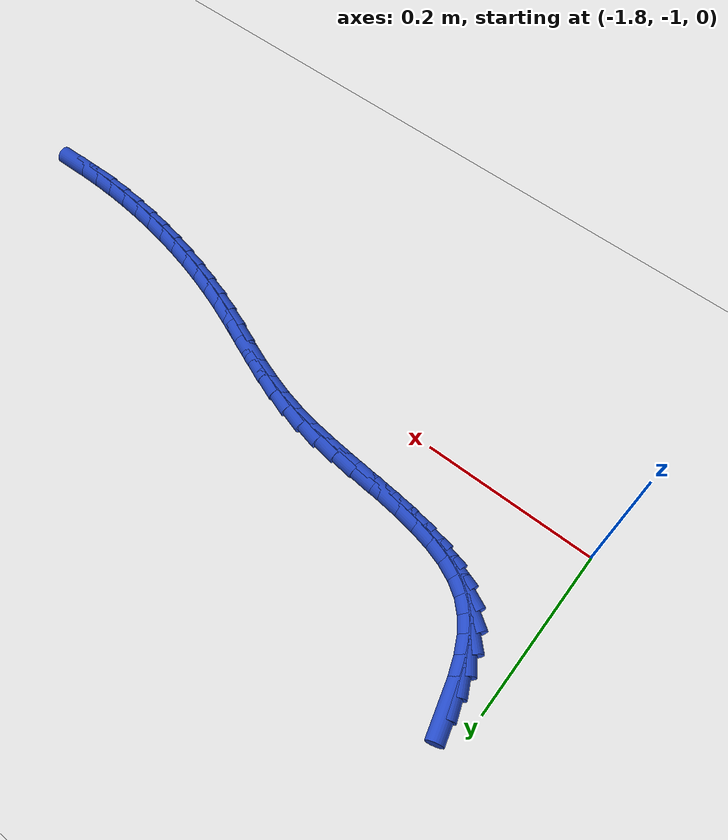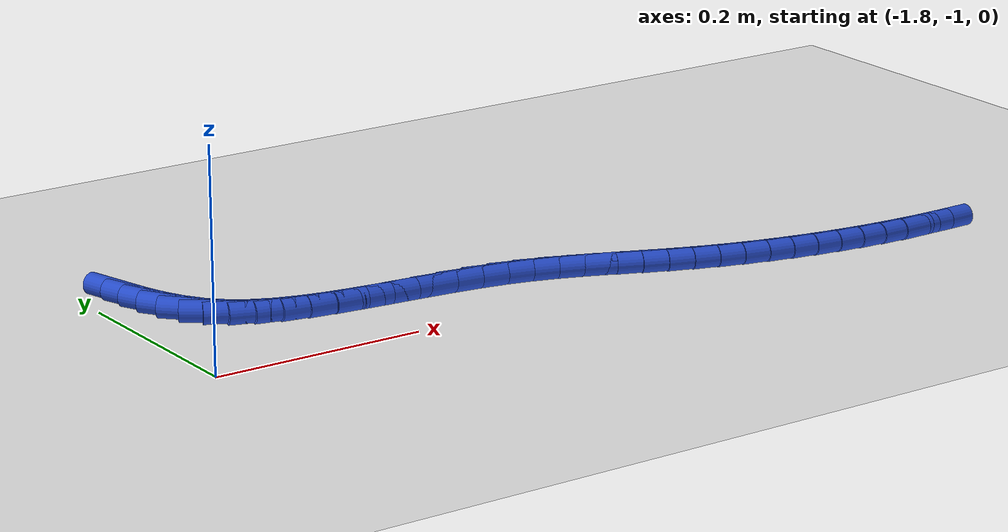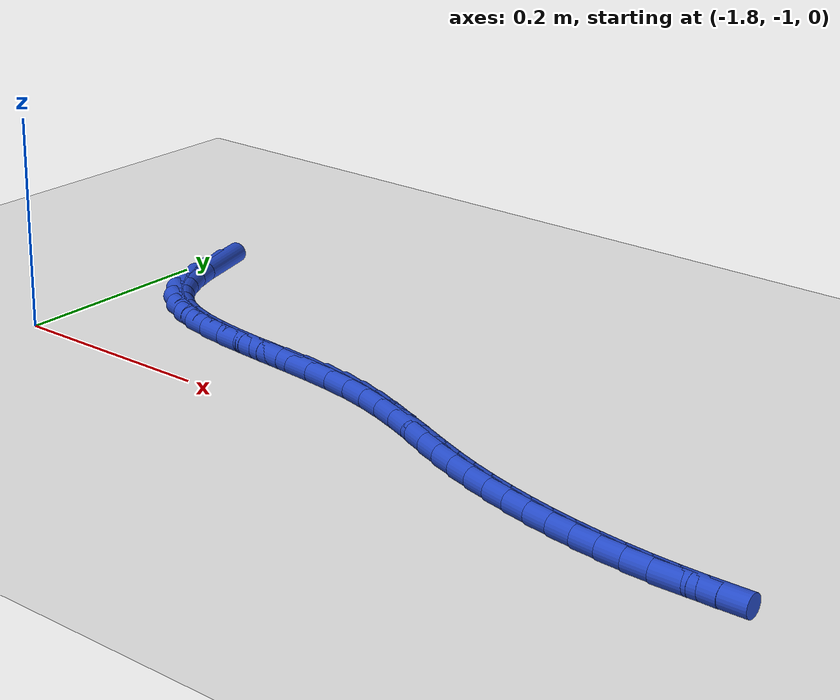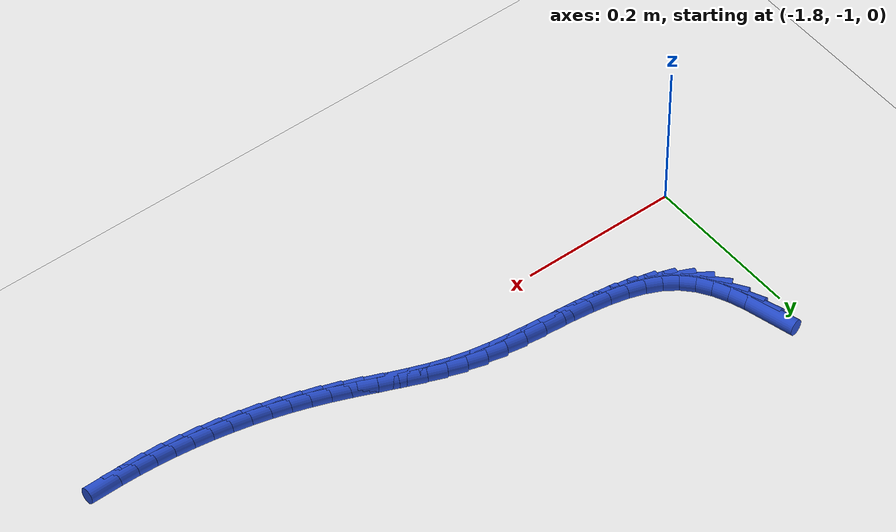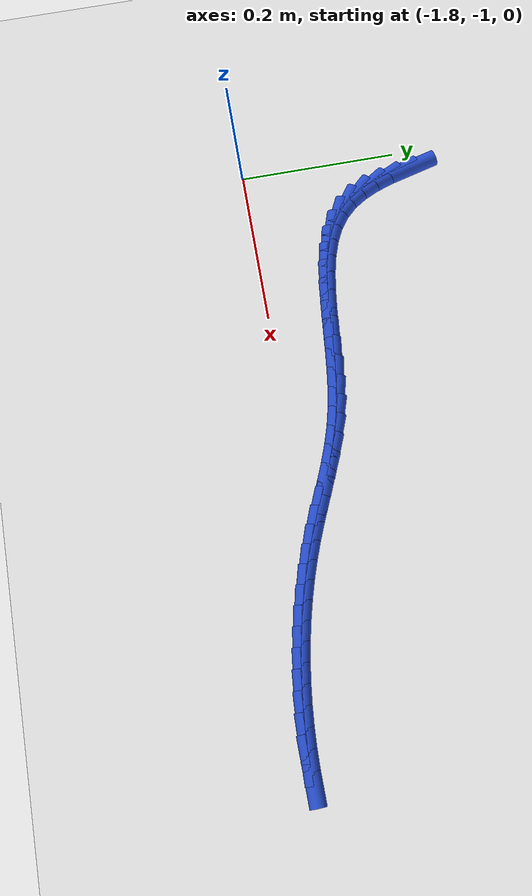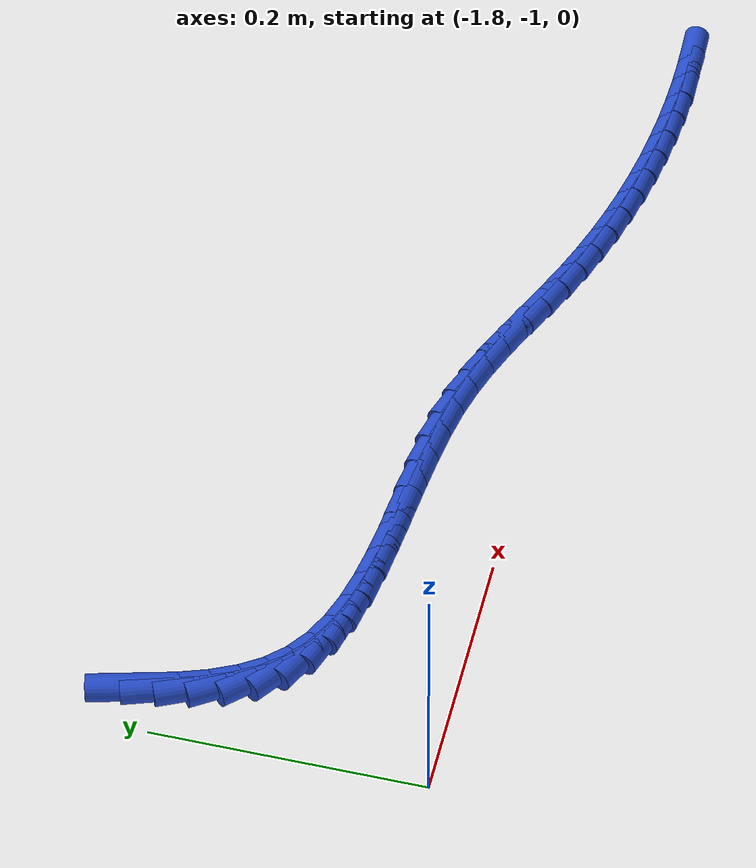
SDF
<sdf version="1.6">
 <world name="default">
  <model name="ground_plane">
   <static>1</static>
   <link name="link">
    <collision name="collision">
     <geometry><plane><normal>0 0 1</normal><size>100 100</size></plane></geometry>
     <surface><friction><ode><mu>100</mu><mu2>50</mu2></ode></friction></surface>
    </collision>
    <visual name="visual">
     <cast_shadows>0</cast_shadows>
     <geometry><plane><normal>0 0 1</normal><size>100 100</size></plane></geometry>
     <material>
      <script><uri>file://media/materials/scripts/gazebo.material</uri><name>Gazebo/WhiteGlow</name></script>
     </material>
    </visual>
   </link>
  </model>
  <model name="line">
   <link name="link_176">
    <pose>-1.7695899046399313 -0.7878719735642523 0.01 0 1.57 -1.3110542526922335</pose>
    <collision name="collision">
     <geometry><cylinder><radius>0.01</radius><length>0.08</length></cylinder></geometry>
    </collision>
    <visual name="visual">
     <material>
      <script><name>Gazebo/Blue</name><uri>file://media/materials/scripts/gazebo.material</uri></script>
     </material>
     <geometry><cylinder><radius>0.01</radius><length>0.08</length></cylinder></geometry>
    </visual>
   </link>
   <link name="link_177">
    <pose>-1.7634740653323266 -0.8108858798129241 0.01 0 1.57 -1.2358393991711434</pose>
    <collision name="collision">
     <geometry><cylinder><radius>0.01</radius><length>0.08</length></cylinder></geometry>
    </collision>
    <visual name="visual">
     <material>
      <script><name>Gazebo/Blue</name><uri>file://media/materials/scripts/gazebo.material</uri></script>
     </material>
     <geometry><cylinder><radius>0.01</radius><length>0.08</length></cylinder></geometry>
    </visual>
   </link>
   <link name="link_178">
    <pose>-1.7560218552499531 -0.8322957963094053 0.01 0 1.57 -1.1293885281058291</pose>
    <collision name="collision">
     <geometry><cylinder><radius>0.01</radius><length>0.08</length></cylinder></geometry>
    </collision>
    <visual name="visual">
     <material>
      <script><name>Gazebo/Blue</name><uri>file://media/materials/scripts/gazebo.material</uri></script>
     </material>
     <geometry><cylinder><radius>0.01</radius><length>0.08</length></cylinder></geometry>
    </visual>
   </link>
   <link name="link_179">
    <pose>-1.7468418427147905 -0.8517243332401836 0.01 0 1.57 -0.9860697219001522</pose>
    <collision name="collision">
     <geometry><cylinder><radius>0.01</radius><length>0.08</length></cylinder></geometry>
    </collision>
    <visual name="visual">
     <material>
      <script><name>Gazebo/Blue</name><uri>file://media/materials/scripts/gazebo.material</uri></script>
     </material>
     <geometry><cylinder><radius>0.01</radius><length>0.08</length></cylinder></geometry>
    </visual>
   </link>
   <link name="link_180">
    <pose>-1.7355425960488202 -0.8687941007917469 0.01 0 1.57 -0.8041712068068045</pose>
    <collision name="collision">
     <geometry><cylinder><radius>0.01</radius><length>0.08</length></cylinder></geometry>
    </collision>
    <visual name="visual">
     <material>
      <script><name>Gazebo/Blue</name><uri>file://media/materials/scripts/gazebo.material</uri></script>
     </material>
     <geometry><cylinder><radius>0.01</radius><length>0.08</length></cylinder></geometry>
    </visual>
   </link>
   <link name="link_181">
    <pose>-1.7217349644224205 -0.8831301367882725 0.01 0 1.57 -0.6087997360396437</pose>
    <collision name="collision">
     <geometry><cylinder><radius>0.01</radius><length>0.08</length></cylinder></geometry>
    </collision>
    <visual name="visual">
     <material>
      <script><name>Gazebo/Blue</name><uri>file://media/materials/scripts/gazebo.material</uri></script>
     </material>
     <geometry><cylinder><radius>0.01</radius><length>0.08</length></cylinder></geometry>
    </visual>
   </link>
   <link name="link_182">
    <pose>-1.7052673197819812 -0.8946102881591274 0.01 0 1.57 -0.4445202634442404</pose>
    <collision name="collision">
     <geometry><cylinder><radius>0.01</radius><length>0.08</length></cylinder></geometry>
    </collision>
    <visual name="visual">
     <material>
      <script><name>Gazebo/Blue</name><uri>file://media/materials/scripts/gazebo.material</uri></script>
     </material>
     <geometry><cylinder><radius>0.01</radius><length>0.08</length></cylinder></geometry>
    </visual>
   </link>
   <link name="link_183">
    <pose>-1.6864299768119149 -0.9035827868216939 0.01 0 1.57 -0.31778493278388914</pose>
    <collision name="collision">
     <geometry><cylinder><radius>0.01</radius><length>0.08</length></cylinder></geometry>
    </collision>
    <visual name="visual">
     <material>
      <script><name>Gazebo/Blue</name><uri>file://media/materials/scripts/gazebo.material</uri></script>
     </material>
     <geometry><cylinder><radius>0.01</radius><length>0.08</length></cylinder></geometry>
    </visual>
   </link>
   <link name="link_184">
    <pose>-1.6655614248499198 -0.9104471397381935 0.01 0 1.57 -0.22466281270420518</pose>
    <collision name="collision">
     <geometry><cylinder><radius>0.01</radius><length>0.08</length></cylinder></geometry>
    </collision>
    <visual name="visual">
     <material>
      <script><name>Gazebo/Blue</name><uri>file://media/materials/scripts/gazebo.material</uri></script>
     </material>
     <geometry><cylinder><radius>0.01</radius><length>0.08</length></cylinder></geometry>
    </visual>
   </link>
   <link name="link_185">
    <pose>-1.6430001532336957 -0.9156028538708476 0.01 0 1.57 -0.15947471651282802</pose>
    <collision name="collision">
     <geometry><cylinder><radius>0.01</radius><length>0.08</length></cylinder></geometry>
    </collision>
    <visual name="visual">
     <material>
      <script><name>Gazebo/Blue</name><uri>file://media/materials/scripts/gazebo.material</uri></script>
     </material>
     <geometry><cylinder><radius>0.01</radius><length>0.08</length></cylinder></geometry>
    </visual>
   </link>
   <link name="link_186">
    <pose>-1.6190846513009418 -0.9194494361818779 0.01 0 1.57 -0.11726185157563984</pose>
    <collision name="collision">
     <geometry><cylinder><radius>0.01</radius><length>0.08</length></cylinder></geometry>
    </collision>
    <visual name="visual">
     <material>
      <script><name>Gazebo/Blue</name><uri>file://media/materials/scripts/gazebo.material</uri></script>
     </material>
     <geometry><cylinder><radius>0.01</radius><length>0.08</length></cylinder></geometry>
    </visual>
   </link>
   <link name="link_187">
    <pose>-1.5941534083893578 -0.9223863936335065 0.01 0 1.57 -0.0944847998326429</pose>
    <collision name="collision">
     <geometry><cylinder><radius>0.01</radius><length>0.08</length></cylinder></geometry>
    </collision>
    <visual name="visual">
     <material>
      <script><name>Gazebo/Blue</name><uri>file://media/materials/scripts/gazebo.material</uri></script>
     </material>
     <geometry><cylinder><radius>0.01</radius><length>0.08</length></cylinder></geometry>
    </visual>
   </link>
   <link name="link_188">
    <pose>-1.5685449138366423 -0.9248132331879545 0.01 0 1.57 -0.08903081909985161</pose>
    <collision name="collision">
     <geometry><cylinder><radius>0.01</radius><length>0.08</length></cylinder></geometry>
    </collision>
    <visual name="visual">
     <material>
      <script><name>Gazebo/Blue</name><uri>file://media/materials/scripts/gazebo.material</uri></script>
     </material>
     <geometry><cylinder><radius>0.01</radius><length>0.08</length></cylinder></geometry>
    </visual>
   </link>
   <link name="link_189">
    <pose>-1.5425976569804942 -0.9271294618074436 0.01 0 1.57 -0.10006439605375111</pose>
    <collision name="collision">
     <geometry><cylinder><radius>0.01</radius><length>0.08</length></cylinder></geometry>
    </collision>
    <visual name="visual">
     <material>
      <script><name>Gazebo/Blue</name><uri>file://media/materials/scripts/gazebo.material</uri></script>
     </material>
     <geometry><cylinder><radius>0.01</radius><length>0.08</length></cylinder></geometry>
    </visual>
   </link>
   <link name="link_190">
    <pose>-1.516650127158614 -0.929734586454196 0.01 0 1.57 -0.1279045526520036</pose>
    <collision name="collision">
     <geometry><cylinder><radius>0.01</radius><length>0.08</length></cylinder></geometry>
    </collision>
    <visual name="visual">
     <material>
      <script><name>Gazebo/Blue</name><uri>file://media/materials/scripts/gazebo.material</uri></script>
     </material>
     <geometry><cylinder><radius>0.01</radius><length>0.08</length></cylinder></geometry>
    </visual>
   </link>
   <link name="link_191">
    <pose>-1.4910408137087 -0.9330281140904328 0.01 0 1.57 -0.1739550705318752</pose>
    <collision name="collision">
     <geometry><cylinder><radius>0.01</radius><length>0.08</length></cylinder></geometry>
    </collision>
    <visual name="visual">
     <material>
      <script><name>Gazebo/Blue</name><uri>file://media/materials/scripts/gazebo.material</uri></script>
     </material>
     <geometry><cylinder><radius>0.01</radius><length>0.08</length></cylinder></geometry>
    </visual>
   </link>
   <link name="link_192">
    <pose>-1.4661082059684523 -0.9374095516783756 0.01 0 1.57 -0.23853593183771524</pose>
    <collision name="collision">
     <geometry><cylinder><radius>0.01</radius><length>0.08</length></cylinder></geometry>
    </collision>
    <visual name="visual">
     <material>
      <script><name>Gazebo/Blue</name><uri>file://media/materials/scripts/gazebo.material</uri></script>
     </material>
     <geometry><cylinder><radius>0.01</radius><length>0.08</length></cylinder></geometry>
    </visual>
   </link>
   <link name="link_193">
    <pose>-1.4421569364573092 -0.9432336743833426 0.01 0 1.57 -0.3024398252913775</pose>
    <collision name="collision">
     <geometry><cylinder><radius>0.01</radius><length>0.08</length></cylinder></geometry>
    </collision>
    <visual name="visual">
     <material>
      <script><name>Gazebo/Blue</name><uri>file://media/materials/scripts/gazebo.material</uri></script>
     </material>
     <geometry><cylinder><radius>0.01</radius><length>0.08</length></cylinder></geometry>
    </visual>
   </link>
   <link name="link_194">
    <pose>-1.4191550334130818 -0.9504105341173793 0.01 0 1.57 -0.35209704745029136</pose>
    <collision name="collision">
     <geometry><cylinder><radius>0.01</radius><length>0.08</length></cylinder></geometry>
    </collision>
    <visual name="visual">
     <material>
      <script><name>Gazebo/Blue</name><uri>file://media/materials/scripts/gazebo.material</uri></script>
     </material>
     <geometry><cylinder><radius>0.01</radius><length>0.08</length></cylinder></geometry>
    </visual>
   </link>
   <link name="link_195">
    <pose>-1.3968776741272164 -0.9585953871617366 0.01 0 1.57 -0.38576441747535395</pose>
    <collision name="collision">
     <geometry><cylinder><radius>0.01</radius><length>0.08</length></cylinder></geometry>
    </collision>
    <visual name="visual">
     <material>
      <script><name>Gazebo/Blue</name><uri>file://media/materials/scripts/gazebo.material</uri></script>
     </material>
     <geometry><cylinder><radius>0.01</radius><length>0.08</length></cylinder></geometry>
    </visual>
   </link>
   <link name="link_196">
    <pose>-1.3750977565052884 -0.9674404782617023 0.01 0 1.57 -0.40250065735646107</pose>
    <collision name="collision">
     <geometry><cylinder><radius>0.01</radius><length>0.08</length></cylinder></geometry>
    </collision>
    <visual name="visual">
     <material>
      <script><name>Gazebo/Blue</name><uri>file://media/materials/scripts/gazebo.material</uri></script>
     </material>
     <geometry><cylinder><radius>0.01</radius><length>0.08</length></cylinder></geometry>
    </visual>
   </link>
   <link name="link_197">
    <pose>-1.3535881784528727 -0.9765980521625631 0.01 0 1.57 -0.4018353995579104</pose>
    <collision name="collision">
     <geometry><cylinder><radius>0.01</radius><length>0.08</length></cylinder></geometry>
    </collision>
    <visual name="visual">
     <material>
      <script><name>Gazebo/Blue</name><uri>file://media/materials/scripts/gazebo.material</uri></script>
     </material>
     <geometry><cylinder><radius>0.01</radius><length>0.08</length></cylinder></geometry>
    </visual>
   </link>
   <link name="link_198">
    <pose>-1.332121837875545 -0.9857203536096064 0.01 0 1.57 -0.38365565201486196</pose>
    <collision name="collision">
     <geometry><cylinder><radius>0.01</radius><length>0.08</length></cylinder></geometry>
    </collision>
    <visual name="visual">
     <material>
      <script><name>Gazebo/Blue</name><uri>file://media/materials/scripts/gazebo.material</uri></script>
     </material>
     <geometry><cylinder><radius>0.01</radius><length>0.08</length></cylinder></geometry>
    </visual>
   </link>
   <link name="link_199">
    <pose>-1.3104716326788786 -0.9944596273481191 0.01 0 1.57 -0.3507095074401459</pose>
    <collision name="collision">
     <geometry><cylinder><radius>0.01</radius><length>0.08</length></cylinder></geometry>
    </collision>
    <visual name="visual">
     <material>
      <script><name>Gazebo/Blue</name><uri>file://media/materials/scripts/gazebo.material</uri></script>
     </material>
     <geometry><cylinder><radius>0.01</radius><length>0.08</length></cylinder></geometry>
    </visual>
   </link>
   <link name="link_200">
    <pose>-1.2884484157678266 -1.0025164413454561 0.01 0 1.57 -0.31512823279263213</pose>
    <collision name="collision">
     <geometry><cylinder><radius>0.01</radius><length>0.08</length></cylinder></geometry>
    </collision>
    <visual name="visual">
     <material>
      <script><name>Gazebo/Blue</name><uri>file://media/materials/scripts/gazebo.material</uri></script>
     </material>
     <geometry><cylinder><radius>0.01</radius><length>0.08</length></cylinder></geometry>
    </visual>
   </link>
   <link name="link_201">
    <pose>-1.26604295526948 -1.0098204264954922 0.01 0 1.57 -0.28034707249432494</pose>
    <collision name="collision">
     <geometry><cylinder><radius>0.01</radius><length>0.08</length></cylinder></geometry>
    </collision>
    <visual name="visual">
     <material>
      <script><name>Gazebo/Blue</name><uri>file://media/materials/scripts/gazebo.material</uri></script>
     </material>
     <geometry><cylinder><radius>0.01</radius><length>0.08</length></cylinder></geometry>
    </visual>
   </link>
   <link name="link_202">
    <pose>-1.2432992750605816 -1.016369017392776 0.01 0 1.57 -0.24625184868672412</pose>
    <collision name="collision">
     <geometry><cylinder><radius>0.01</radius><length>0.08</length></cylinder></geometry>
    </collision>
    <visual name="visual">
     <material>
      <script><name>Gazebo/Blue</name><uri>file://media/materials/scripts/gazebo.material</uri></script>
     </material>
     <geometry><cylinder><radius>0.01</radius><length>0.08</length></cylinder></geometry>
    </visual>
   </link>
   <link name="link_203">
    <pose>-1.2202614071650164 -1.0221596590045672 0.01 0 1.57 -0.21272867109177226</pose>
    <collision name="collision">
     <geometry><cylinder><radius>0.01</radius><length>0.08</length></cylinder></geometry>
    </collision>
    <visual name="visual">
     <material>
      <script><name>Gazebo/Blue</name><uri>file://media/materials/scripts/gazebo.material</uri></script>
     </material>
     <geometry><cylinder><radius>0.01</radius><length>0.08</length></cylinder></geometry>
    </visual>
   </link>
   <link name="link_204">
    <pose>-1.1969733836066716 -1.0271897962981251 0.01 0 1.57 -0.1796645756888068</pose>
    <collision name="collision">
     <geometry><cylinder><radius>0.01</radius><length>0.08</length></cylinder></geometry>
    </collision>
    <visual name="visual">
     <material>
      <script><name>Gazebo/Blue</name><uri>file://media/materials/scripts/gazebo.material</uri></script>
     </material>
     <geometry><cylinder><radius>0.01</radius><length>0.08</length></cylinder></geometry>
    </visual>
   </link>
   <link name="link_205">
    <pose>-1.1734792364094324 -1.0314568742407086 0.01 0 1.57 -0.14694745914514973</pose>
    <collision name="collision">
     <geometry><cylinder><radius>0.01</radius><length>0.08</length></cylinder></geometry>
    </collision>
    <visual name="visual">
     <material>
      <script><name>Gazebo/Blue</name><uri>file://media/materials/scripts/gazebo.material</uri></script>
     </material>
     <geometry><cylinder><radius>0.01</radius><length>0.08</length></cylinder></geometry>
    </visual>
   </link>
   <link name="link_206">
    <pose>-1.1498229975971845 -1.034958337799578 0.01 0 1.57 -0.11446588452068072</pose>
    <collision name="collision">
     <geometry><cylinder><radius>0.01</radius><length>0.08</length></cylinder></geometry>
    </collision>
    <visual name="visual">
     <material>
      <script><name>Gazebo/Blue</name><uri>file://media/materials/scripts/gazebo.material</uri></script>
     </material>
     <geometry><cylinder><radius>0.01</radius><length>0.08</length></cylinder></geometry>
    </visual>
   </link>
   <link name="link_207">
    <pose>-1.126048699193814 -1.0376916319419918 0.01 0 1.57 -0.08210879285025097</pose>
    <collision name="collision">
     <geometry><cylinder><radius>0.01</radius><length>0.08</length></cylinder></geometry>
    </collision>
    <visual name="visual">
     <material>
      <script><name>Gazebo/Blue</name><uri>file://media/materials/scripts/gazebo.material</uri></script>
     </material>
     <geometry><cylinder><radius>0.01</radius><length>0.08</length></cylinder></geometry>
    </visual>
   </link>
   <link name="link_208">
    <pose>-1.1022003732232057 -1.0396542016352093 0.01 0 1.57 -0.04976515043372274</pose>
    <collision name="collision">
     <geometry><cylinder><radius>0.01</radius><length>0.08</length></cylinder></geometry>
    </collision>
    <visual name="visual">
     <material>
      <script><name>Gazebo/Blue</name><uri>file://media/materials/scripts/gazebo.material</uri></script>
     </material>
     <geometry><cylinder><radius>0.01</radius><length>0.08</length></cylinder></geometry>
    </visual>
   </link>
   <link name="link_209">
    <pose>-1.0783220517092476 -1.04084349184649 0.01 0 1.57 -0.017323558408006534</pose>
    <collision name="collision">
     <geometry><cylinder><radius>0.01</radius><length>0.08</length></cylinder></geometry>
    </collision>
    <visual name="visual">
     <material>
      <script><name>Gazebo/Blue</name><uri>file://media/materials/scripts/gazebo.material</uri></script>
     </material>
     <geometry><cylinder><radius>0.01</radius><length>0.08</length></cylinder></geometry>
    </visual>
   </link>
   <link name="link_210">
    <pose>-1.0544577666758237 -1.041256947543093 0.01 0 1.57 0.015328150496010572</pose>
    <collision name="collision">
     <geometry><cylinder><radius>0.01</radius><length>0.08</length></cylinder></geometry>
    </collision>
    <visual name="visual">
     <material>
      <script><name>Gazebo/Blue</name><uri>file://media/materials/scripts/gazebo.material</uri></script>
     </material>
     <geometry><cylinder><radius>0.01</radius><length>0.08</length></cylinder></geometry>
    </visual>
   </link>
  </model>
 </world>
</sdf>
